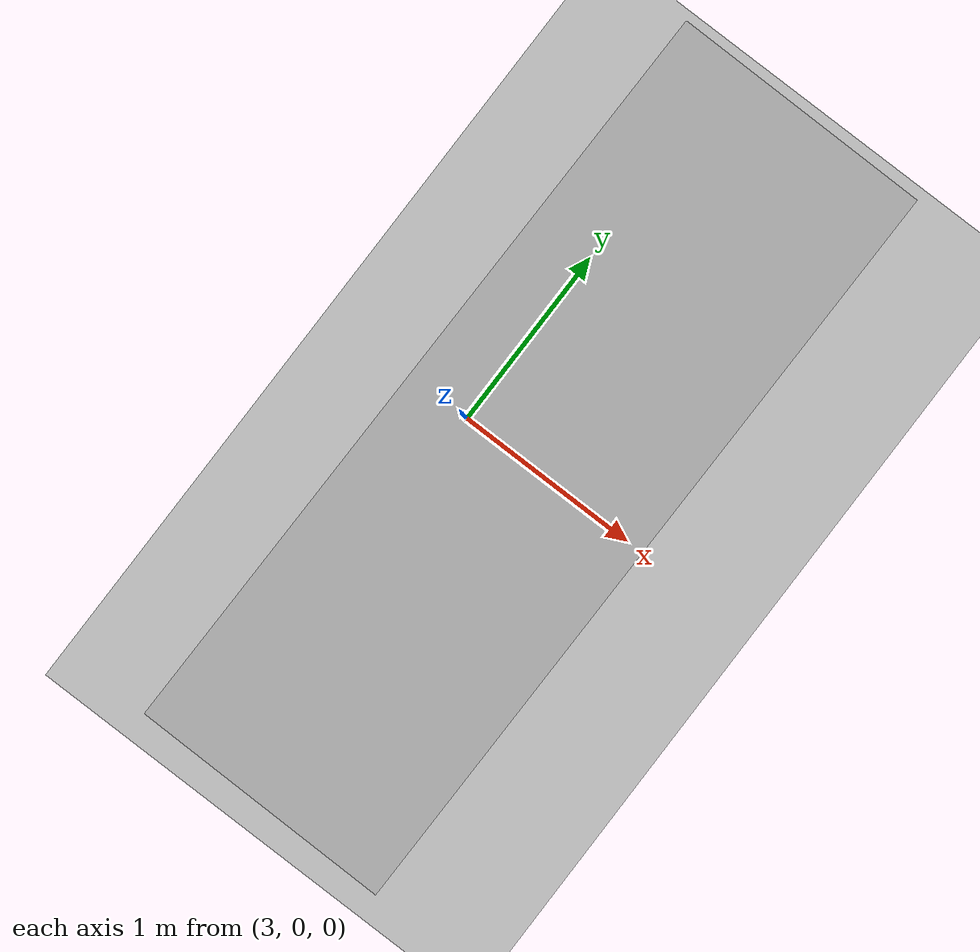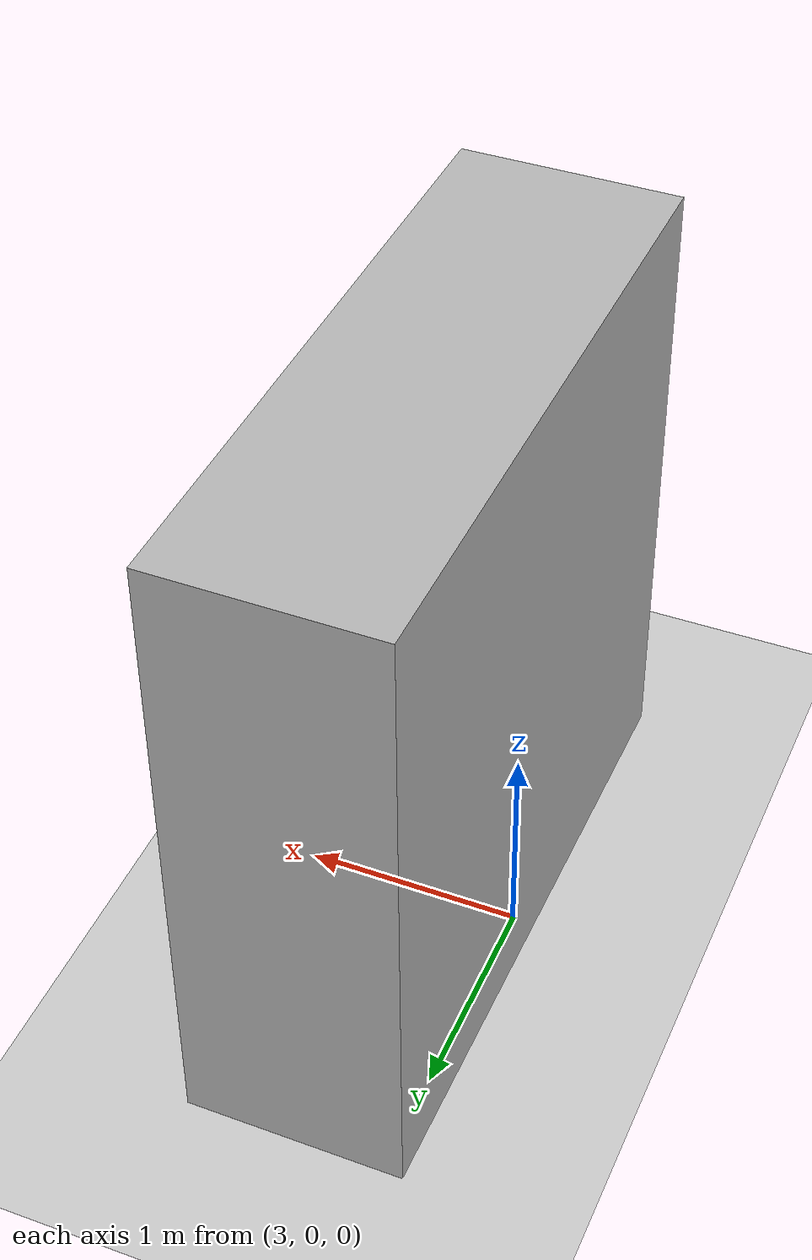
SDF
<sdf version="1.5">
 <world name="default">
  <light name="sun" type="directional">
   <pose>0 0 10 0 -0 0</pose>
   <diffuse>0.8 0.8 0.8 1</diffuse>
   <specular>0.2 0.2 0.2 1</specular>
   <attenuation>
    <range>1000</range>
    <constant>0.9</constant>
    <linear>0.01</linear>
    <quadratic>0.001</quadratic>
   </attenuation>
   <direction>-0.5 0.1 -0.9</direction>
  </light>
  <physics type="ode">
   <max_step_size>0.001</max_step_size>
   <real_time_factor>1</real_time_factor>
   <real_time_update_rate>1000</real_time_update_rate>
   <gravity>0 0 -9.8</gravity>
   <magnetic_field>5.5645e-06 2.28758e-05 -4.23884e-05</magnetic_field>
  </physics>
  <scene><ambient>0.4 0.4 0.4 1</ambient><background>0.7 0.7 0.7 1</background><shadows>1</shadows></scene>
  <spherical_coordinates>
   <surface_model>EARTH_WGS84</surface_model>
   <latitude_deg>0</latitude_deg>
   <longitude_deg>0</longitude_deg>
   <elevation>0</elevation>
   <heading_deg>0</heading_deg>
  </spherical_coordinates>
  <model name="brick_box_3x1x3_0">
   <pose>3.39937 0.004062 -0.008624 0 0 -1.5792</pose>
   <static>1</static>
   <link name="brick_box_3x1x3::chassis">
    <pose>0 0 1.5 0 -0 0</pose>
    <collision name="collision"><geometry><box><size>3 1 3</size></box></geometry></collision>
    <visual name="visual">
     <geometry><mesh><uri>model://brick_box_3x1x3/meshes/simple_box.dae</uri><scale>3 1 3</scale></mesh></geometry>
     <material>
      <script>
       <uri>model://brick_box_3x1x3/materials/scripts</uri>
       <uri>model://brick_box_3x1x3/materials/textures</uri>
       <name>BrickBox/Diffuse</name>
      </script>
     </material>
    </visual>
   </link>
  </model>
  <model name="ground_plane">
   <static>1</static>
   <link name="link">
    <collision name="collision">
     <geometry><plane><normal>0 0 1</normal><size>100 100</size></plane></geometry>
     <surface><friction><ode><mu>100</mu><mu2>50</mu2></ode></friction></surface>
    </collision>
    <visual name="visual">
     <cast_shadows>0</cast_shadows>
     <geometry><plane><normal>0 0 1</normal><size>100 100</size></plane></geometry>
     <material>
      <script><uri>file://media/materials/scripts/gazebo.material</uri><name>Gazebo/Grey</name></script>
     </material>
    </visual>
    <velocity_decay><linear>0</linear><angular>0</angular></velocity_decay>
   </link>
  </model>
 </world>
</sdf>
